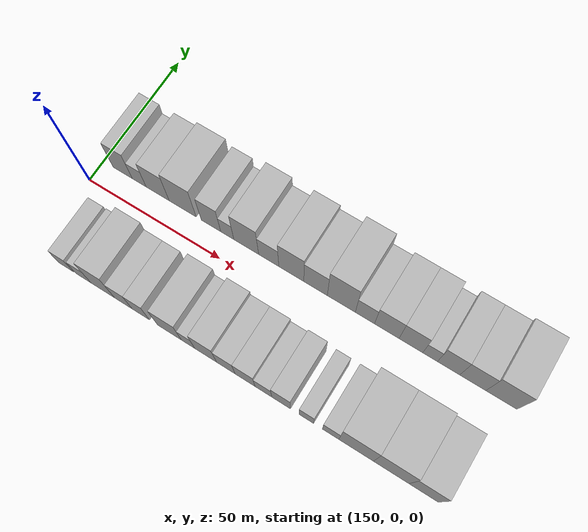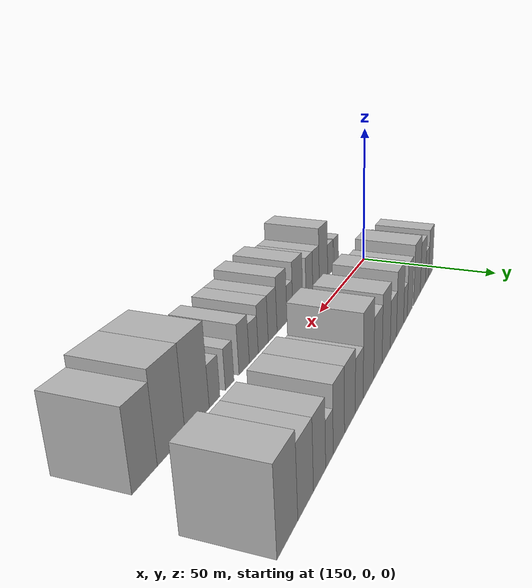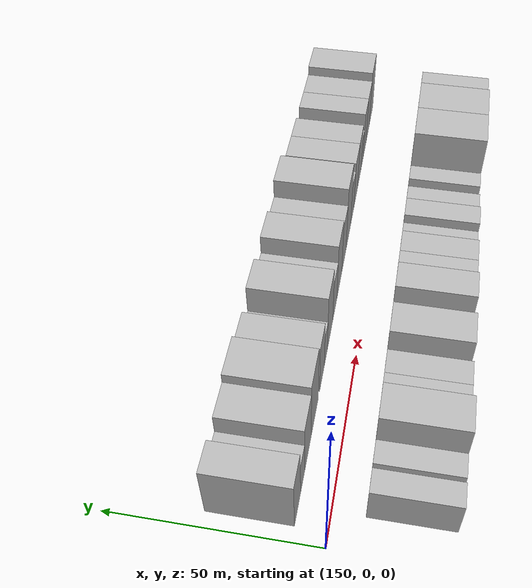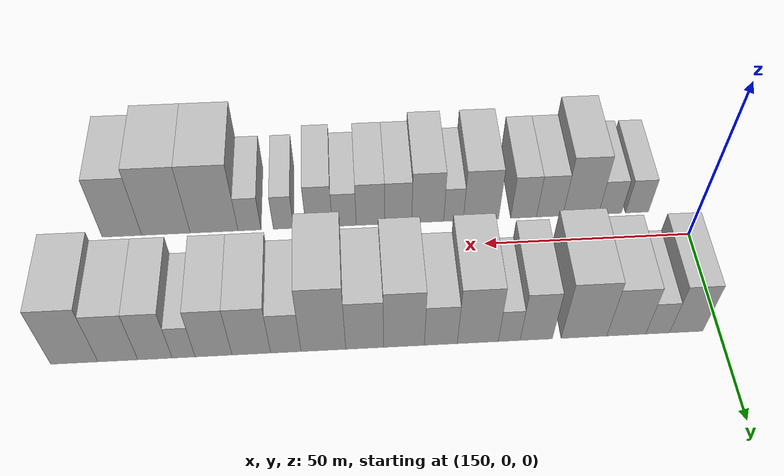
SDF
<sdf version="1.6">
 <world name="default">
  <model name="building_17">
   <static>1</static>
   <pose>157.5444 17.5000 0 0.000000 0.000000 1.570796</pose>
   <link name="link">
    <pose>0 0 9.00 0 0 0</pose>
    <collision name="collision"><geometry><box><size>20.0000 7.6067 18.0000</size></box></geometry></collision>
    <visual name="visual">
     <cast_shadows>0</cast_shadows>
     <geometry><box><size>20.0000 7.6067 18.0000</size></box></geometry>
     <material>
      <script>
       <uri>model://HANNAS_wall/materials/scripts</uri>
       <uri>model://HANNAS_wall/materials/textures</uri>
       <name>vrc/HANNAS_wall</name>
      </script>
     </material>
    </visual>
   </link>
  </model>
  <model name="building_18">
   <static>1</static>
   <pose>164.0554 17.5000 0 0.000000 0.000000 1.570796</pose>
   <link name="link">
    <pose>0 0 6.00 0 0 0</pose>
    <collision name="collision"><geometry><box><size>20.0000 5.4154 12.0000</size></box></geometry></collision>
    <visual name="visual">
     <cast_shadows>0</cast_shadows>
     <geometry><box><size>20.0000 5.4154 12.0000</size></box></geometry>
     <material>
      <script>
       <uri>model://HANNAS_wall/materials/scripts</uri>
       <uri>model://HANNAS_wall/materials/textures</uri>
       <name>vrc/HANNAS_wall</name>
      </script>
     </material>
    </visual>
   </link>
  </model>
  <model name="building_19">
   <static>1</static>
   <pose>171.2047 17.5000 0 0.000000 0.000000 1.570796</pose>
   <link name="link">
    <pose>0 0 9.00 0 0 0</pose>
    <collision name="collision"><geometry><box><size>20.0000 8.8832 18.0000</size></box></geometry></collision>
    <visual name="visual">
     <cast_shadows>0</cast_shadows>
     <geometry><box><size>20.0000 8.8832 18.0000</size></box></geometry>
     <material>
      <script>
       <uri>model://HANNAS_wall/materials/scripts</uri>
       <uri>model://HANNAS_wall/materials/textures</uri>
       <name>vrc/HANNAS_wall</name>
      </script>
     </material>
    </visual>
   </link>
  </model>
  <model name="building_20">
   <static>1</static>
   <pose>180.8166 17.5000 0 0.000000 0.000000 1.570796</pose>
   <link name="link">
    <pose>0 0 10.50 0 0 0</pose>
    <collision name="collision"><geometry><box><size>20.0000 10.3407 21.0000</size></box></geometry></collision>
    <visual name="visual">
     <cast_shadows>0</cast_shadows>
     <geometry><box><size>20.0000 10.3407 21.0000</size></box></geometry>
     <material>
      <script>
       <uri>model://HANNAS_wall/materials/scripts</uri>
       <uri>model://HANNAS_wall/materials/textures</uri>
       <name>vrc/HANNAS_wall</name>
      </script>
     </material>
    </visual>
   </link>
  </model>
  <model name="building_21">
   <static>1</static>
   <pose>191.6453 17.5000 0 0.000000 0.000000 1.570796</pose>
   <link name="link">
    <pose>0 0 9.00 0 0 0</pose>
    <collision name="collision"><geometry><box><size>20.0000 7.3166 18.0000</size></box></geometry></collision>
    <visual name="visual">
     <cast_shadows>0</cast_shadows>
     <geometry><box><size>20.0000 7.3166 18.0000</size></box></geometry>
     <material>
      <script>
       <uri>model://HANNAS_wall/materials/scripts</uri>
       <uri>model://HANNAS_wall/materials/textures</uri>
       <name>vrc/HANNAS_wall</name>
      </script>
     </material>
    </visual>
   </link>
  </model>
  <model name="building_22">
   <static>1</static>
   <pose>197.7555 17.5000 0 0.000000 0.000000 1.570796</pose>
   <link name="link">
    <pose>0 0 6.00 0 0 0</pose>
    <collision name="collision"><geometry><box><size>20.0000 4.9037 12.0000</size></box></geometry></collision>
    <visual name="visual">
     <cast_shadows>0</cast_shadows>
     <geometry><box><size>20.0000 4.9037 12.0000</size></box></geometry>
     <material>
      <script>
       <uri>model://HANNAS_wall/materials/scripts</uri>
       <uri>model://HANNAS_wall/materials/textures</uri>
       <name>vrc/HANNAS_wall</name>
      </script>
     </material>
    </visual>
   </link>
  </model>
  <model name="building_23">
   <static>1</static>
   <pose>204.8194 17.5000 0 0.000000 0.000000 1.570796</pose>
   <link name="link">
    <pose>0 0 10.50 0 0 0</pose>
    <collision name="collision"><geometry><box><size>20.0000 9.2242 21.0000</size></box></geometry></collision>
    <visual name="visual">
     <cast_shadows>0</cast_shadows>
     <geometry><box><size>20.0000 9.2242 21.0000</size></box></geometry>
     <material>
      <script>
       <uri>model://HANNAS_wall/materials/scripts</uri>
       <uri>model://HANNAS_wall/materials/textures</uri>
       <name>vrc/HANNAS_wall</name>
      </script>
     </material>
    </visual>
   </link>
  </model>
  <model name="building_24">
   <static>1</static>
   <pose>213.1341 17.5000 0 0.000000 0.000000 1.570796</pose>
   <link name="link">
    <pose>0 0 7.50 0 0 0</pose>
    <collision name="collision"><geometry><box><size>20.0000 7.4053 15.0000</size></box></geometry></collision>
    <visual name="visual">
     <cast_shadows>0</cast_shadows>
     <geometry><box><size>20.0000 7.4053 15.0000</size></box></geometry>
     <material>
      <script>
       <uri>model://HANNAS_wall/materials/scripts</uri>
       <uri>model://HANNAS_wall/materials/textures</uri>
       <name>vrc/HANNAS_wall</name>
      </script>
     </material>
    </visual>
   </link>
  </model>
  <model name="building_25">
   <static>1</static>
   <pose>221.3906 17.5000 0 0.000000 0.000000 1.570796</pose>
   <link name="link">
    <pose>0 0 10.50 0 0 0</pose>
    <collision name="collision"><geometry><box><size>20.0000 9.1077 21.0000</size></box></geometry></collision>
    <visual name="visual">
     <cast_shadows>0</cast_shadows>
     <geometry><box><size>20.0000 9.1077 21.0000</size></box></geometry>
     <material>
      <script>
       <uri>model://HANNAS_wall/materials/scripts</uri>
       <uri>model://HANNAS_wall/materials/textures</uri>
       <name>vrc/HANNAS_wall</name>
      </script>
     </material>
    </visual>
   </link>
  </model>
  <model name="building_26">
   <static>1</static>
   <pose>230.1751 17.5000 0 0.000000 0.000000 1.570796</pose>
   <link name="link">
    <pose>0 0 9.00 0 0 0</pose>
    <collision name="collision"><geometry><box><size>20.0000 8.4612 18.0000</size></box></geometry></collision>
    <visual name="visual">
     <cast_shadows>0</cast_shadows>
     <geometry><box><size>20.0000 8.4612 18.0000</size></box></geometry>
     <material>
      <script>
       <uri>model://HANNAS_wall/materials/scripts</uri>
       <uri>model://HANNAS_wall/materials/textures</uri>
       <name>vrc/HANNAS_wall</name>
      </script>
     </material>
    </visual>
   </link>
  </model>
  <model name="building_27">
   <static>1</static>
   <pose>239.3785 17.5000 0 0.000000 0.000000 1.570796</pose>
   <link name="link">
    <pose>0 0 12.00 0 0 0</pose>
    <collision name="collision"><geometry><box><size>20.0000 9.9455 24.0000</size></box></geometry></collision>
    <visual name="visual">
     <cast_shadows>0</cast_shadows>
     <geometry><box><size>20.0000 9.9455 24.0000</size></box></geometry>
     <material>
      <script>
       <uri>model://HANNAS_wall/materials/scripts</uri>
       <uri>model://HANNAS_wall/materials/textures</uri>
       <name>vrc/HANNAS_wall</name>
      </script>
     </material>
    </visual>
   </link>
  </model>
  <model name="building_28">
   <static>1</static>
   <pose>247.7230 17.5000 0 0.000000 0.000000 1.570796</pose>
   <link name="link">
    <pose>0 0 7.50 0 0 0</pose>
    <collision name="collision"><geometry><box><size>20.0000 6.7434 15.0000</size></box></geometry></collision>
    <visual name="visual">
     <cast_shadows>0</cast_shadows>
     <geometry><box><size>20.0000 6.7434 15.0000</size></box></geometry>
     <material>
      <script>
       <uri>model://HANNAS_wall/materials/scripts</uri>
       <uri>model://HANNAS_wall/materials/textures</uri>
       <name>vrc/HANNAS_wall</name>
      </script>
     </material>
    </visual>
   </link>
  </model>
  <model name="building_29">
   <static>1</static>
   <pose>255.3765 17.5000 0 0.000000 0.000000 1.570796</pose>
   <link name="link">
    <pose>0 0 9.00 0 0 0</pose>
    <collision name="collision"><geometry><box><size>20.0000 8.5637 18.0000</size></box></geometry></collision>
    <visual name="visual">
     <cast_shadows>0</cast_shadows>
     <geometry><box><size>20.0000 8.5637 18.0000</size></box></geometry>
     <material>
      <script>
       <uri>model://HANNAS_wall/materials/scripts</uri>
       <uri>model://HANNAS_wall/materials/textures</uri>
       <name>vrc/HANNAS_wall</name>
      </script>
     </material>
    </visual>
   </link>
  </model>
  <model name="building_30">
   <static>1</static>
   <pose>263.7326 17.5000 0 0.000000 0.000000 1.570796</pose>
   <link name="link">
    <pose>0 0 9.00 0 0 0</pose>
    <collision name="collision"><geometry><box><size>20.0000 8.1484 18.0000</size></box></geometry></collision>
    <visual name="visual">
     <cast_shadows>0</cast_shadows>
     <geometry><box><size>20.0000 8.1484 18.0000</size></box></geometry>
     <material>
      <script>
       <uri>model://HANNAS_wall/materials/scripts</uri>
       <uri>model://HANNAS_wall/materials/textures</uri>
       <name>vrc/HANNAS_wall</name>
      </script>
     </material>
    </visual>
   </link>
  </model>
  <model name="building_31">
   <static>1</static>
   <pose>270.3282 17.5000 0 0.000000 0.000000 1.570796</pose>
   <link name="link">
    <pose>0 0 6.00 0 0 0</pose>
    <collision name="collision"><geometry><box><size>20.0000 5.0429 12.0000</size></box></geometry></collision>
    <visual name="visual">
     <cast_shadows>0</cast_shadows>
     <geometry><box><size>20.0000 5.0429 12.0000</size></box></geometry>
     <material>
      <script>
       <uri>model://HANNAS_wall/materials/scripts</uri>
       <uri>model://HANNAS_wall/materials/textures</uri>
       <name>vrc/HANNAS_wall</name>
      </script>
     </material>
    </visual>
   </link>
  </model>
  <model name="building_32">
   <static>1</static>
   <pose>276.6278 17.5000 0 0.000000 0.000000 1.570796</pose>
   <link name="link">
    <pose>0 0 9.00 0 0 0</pose>
    <collision name="collision"><geometry><box><size>20.0000 7.5561 18.0000</size></box></geometry></collision>
    <visual name="visual">
     <cast_shadows>0</cast_shadows>
     <geometry><box><size>20.0000 7.5561 18.0000</size></box></geometry>
     <material>
      <script>
       <uri>model://HANNAS_wall/materials/scripts</uri>
       <uri>model://HANNAS_wall/materials/textures</uri>
       <name>vrc/HANNAS_wall</name>
      </script>
     </material>
    </visual>
   </link>
  </model>
  <model name="building_33">
   <static>1</static>
   <pose>284.7762 17.5000 0 0.000000 0.000000 1.570796</pose>
   <link name="link">
    <pose>0 0 9.00 0 0 0</pose>
    <collision name="collision"><geometry><box><size>20.0000 8.7407 18.0000</size></box></geometry></collision>
    <visual name="visual">
     <cast_shadows>0</cast_shadows>
     <geometry><box><size>20.0000 8.7407 18.0000</size></box></geometry>
     <material>
      <script>
       <uri>model://HANNAS_wall/materials/scripts</uri>
       <uri>model://HANNAS_wall/materials/textures</uri>
       <name>vrc/HANNAS_wall</name>
      </script>
     </material>
    </visual>
   </link>
  </model>
  <model name="building_34">
   <static>1</static>
   <pose>294.3097 17.5000 0 0.000000 0.000000 1.570796</pose>
   <link name="link">
    <pose>0 0 10.50 0 0 0</pose>
    <collision name="collision"><geometry><box><size>20.0000 10.3263 21.0000</size></box></geometry></collision>
    <visual name="visual">
     <cast_shadows>0</cast_shadows>
     <geometry><box><size>20.0000 10.3263 21.0000</size></box></geometry>
     <material>
      <script>
       <uri>model://HANNAS_wall/materials/scripts</uri>
       <uri>model://HANNAS_wall/materials/textures</uri>
       <name>vrc/HANNAS_wall</name>
      </script>
     </material>
    </visual>
   </link>
  </model>
  <model name="building_51">
   <static>1</static>
   <pose>161.2080 -17.5000 0 0.000000 0.000000 1.570796</pose>
   <link name="link">
    <pose>0 0 6.00 0 0 0</pose>
    <collision name="collision"><geometry><box><size>20.0000 5.7583 12.0000</size></box></geometry></collision>
    <visual name="visual">
     <cast_shadows>0</cast_shadows>
     <geometry><box><size>20.0000 5.7583 12.0000</size></box></geometry>
     <material>
      <script>
       <uri>model://HANNAS_wall/materials/scripts</uri>
       <uri>model://HANNAS_wall/materials/textures</uri>
       <name>vrc/HANNAS_wall</name>
      </script>
     </material>
    </visual>
   </link>
  </model>
  <model name="building_52">
   <static>1</static>
   <pose>167.9482 -17.5000 0 0.000000 0.000000 1.570796</pose>
   <link name="link">
    <pose>0 0 6.00 0 0 0</pose>
    <collision name="collision"><geometry><box><size>20.0000 5.7222 12.0000</size></box></geometry></collision>
    <visual name="visual">
     <cast_shadows>0</cast_shadows>
     <geometry><box><size>20.0000 5.7222 12.0000</size></box></geometry>
     <material>
      <script>
       <uri>model://HANNAS_wall/materials/scripts</uri>
       <uri>model://HANNAS_wall/materials/textures</uri>
       <name>vrc/HANNAS_wall</name>
      </script>
     </material>
    </visual>
   </link>
  </model>
  <model name="building_53">
   <static>1</static>
   <pose>175.2783 -17.5000 0 0.000000 0.000000 1.570796</pose>
   <link name="link">
    <pose>0 0 10.50 0 0 0</pose>
    <collision name="collision"><geometry><box><size>20.0000 8.9378 21.0000</size></box></geometry></collision>
    <visual name="visual">
     <cast_shadows>0</cast_shadows>
     <geometry><box><size>20.0000 8.9378 21.0000</size></box></geometry>
     <material>
      <script>
       <uri>model://HANNAS_wall/materials/scripts</uri>
       <uri>model://HANNAS_wall/materials/textures</uri>
       <name>vrc/HANNAS_wall</name>
      </script>
     </material>
    </visual>
   </link>
  </model>
  <model name="building_54">
   <static>1</static>
   <pose>183.0060 -17.5000 0 0.000000 0.000000 1.570796</pose>
   <link name="link">
    <pose>0 0 7.50 0 0 0</pose>
    <collision name="collision"><geometry><box><size>20.0000 6.5176 15.0000</size></box></geometry></collision>
    <visual name="visual">
     <cast_shadows>0</cast_shadows>
     <geometry><box><size>20.0000 6.5176 15.0000</size></box></geometry>
     <material>
      <script>
       <uri>model://HANNAS_wall/materials/scripts</uri>
       <uri>model://HANNAS_wall/materials/textures</uri>
       <name>vrc/HANNAS_wall</name>
      </script>
     </material>
    </visual>
   </link>
  </model>
  <model name="building_55">
   <static>1</static>
   <pose>189.4736 -17.5000 0 0.000000 0.000000 1.570796</pose>
   <link name="link">
    <pose>0 0 7.50 0 0 0</pose>
    <collision name="collision"><geometry><box><size>20.0000 6.4178 15.0000</size></box></geometry></collision>
    <visual name="visual">
     <cast_shadows>0</cast_shadows>
     <geometry><box><size>20.0000 6.4178 15.0000</size></box></geometry>
     <material>
      <script>
       <uri>model://HANNAS_wall/materials/scripts</uri>
       <uri>model://HANNAS_wall/materials/textures</uri>
       <name>vrc/HANNAS_wall</name>
      </script>
     </material>
    </visual>
   </link>
  </model>
  <model name="building_56">
   <static>1</static>
   <pose>200.0510 -17.5000 0 0.000000 0.000000 1.570796</pose>
   <link name="link">
    <pose>0 0 9.00 0 0 0</pose>
    <collision name="collision"><geometry><box><size>20.0000 8.7370 18.0000</size></box></geometry></collision>
    <visual name="visual">
     <cast_shadows>0</cast_shadows>
     <geometry><box><size>20.0000 8.7370 18.0000</size></box></geometry>
     <material>
      <script>
       <uri>model://HANNAS_wall/materials/scripts</uri>
       <uri>model://HANNAS_wall/materials/textures</uri>
       <name>vrc/HANNAS_wall</name>
      </script>
     </material>
    </visual>
   </link>
  </model>
  <model name="building_57">
   <static>1</static>
   <pose>206.8393 -17.5000 0 0.000000 0.000000 1.570796</pose>
   <link name="link">
    <pose>0 0 6.00 0 0 0</pose>
    <collision name="collision"><geometry><box><size>20.0000 4.8397 12.0000</size></box></geometry></collision>
    <visual name="visual">
     <cast_shadows>0</cast_shadows>
     <geometry><box><size>20.0000 4.8397 12.0000</size></box></geometry>
     <material>
      <script>
       <uri>model://HANNAS_wall/materials/scripts</uri>
       <uri>model://HANNAS_wall/materials/textures</uri>
       <name>vrc/HANNAS_wall</name>
      </script>
     </material>
    </visual>
   </link>
  </model>
  <model name="building_58">
   <static>1</static>
   <pose>213.2057 -17.5000 0 0.000000 0.000000 1.570796</pose>
   <link name="link">
    <pose>0 0 9.00 0 0 0</pose>
    <collision name="collision"><geometry><box><size>20.0000 7.8933 18.0000</size></box></geometry></collision>
    <visual name="visual">
     <cast_shadows>0</cast_shadows>
     <geometry><box><size>20.0000 7.8933 18.0000</size></box></geometry>
     <material>
      <script>
       <uri>model://HANNAS_wall/materials/scripts</uri>
       <uri>model://HANNAS_wall/materials/textures</uri>
       <name>vrc/HANNAS_wall</name>
      </script>
     </material>
    </visual>
   </link>
  </model>
  <model name="building_59">
   <static>1</static>
   <pose>220.4458 -17.5000 0 0.000000 0.000000 1.570796</pose>
   <link name="link">
    <pose>0 0 7.50 0 0 0</pose>
    <collision name="collision"><geometry><box><size>20.0000 6.5869 15.0000</size></box></geometry></collision>
    <visual name="visual">
     <cast_shadows>0</cast_shadows>
     <geometry><box><size>20.0000 6.5869 15.0000</size></box></geometry>
     <material>
      <script>
       <uri>model://HANNAS_wall/materials/scripts</uri>
       <uri>model://HANNAS_wall/materials/textures</uri>
       <name>vrc/HANNAS_wall</name>
      </script>
     </material>
    </visual>
   </link>
  </model>
  <model name="building_60">
   <static>1</static>
   <pose>227.2443 -17.5000 0 0.000000 0.000000 1.570796</pose>
   <link name="link">
    <pose>0 0 7.50 0 0 0</pose>
    <collision name="collision"><geometry><box><size>20.0000 7.0101 15.0000</size></box></geometry></collision>
    <visual name="visual">
     <cast_shadows>0</cast_shadows>
     <geometry><box><size>20.0000 7.0101 15.0000</size></box></geometry>
     <material>
      <script>
       <uri>model://HANNAS_wall/materials/scripts</uri>
       <uri>model://HANNAS_wall/materials/textures</uri>
       <name>vrc/HANNAS_wall</name>
      </script>
     </material>
    </visual>
   </link>
  </model>
  <model name="building_61">
   <static>1</static>
   <pose>233.6816 -17.5000 0 0.000000 0.000000 1.570796</pose>
   <link name="link">
    <pose>0 0 6.00 0 0 0</pose>
    <collision name="collision"><geometry><box><size>20.0000 5.8646 12.0000</size></box></geometry></collision>
    <visual name="visual">
     <cast_shadows>0</cast_shadows>
     <geometry><box><size>20.0000 5.8646 12.0000</size></box></geometry>
     <material>
      <script>
       <uri>model://HANNAS_wall/materials/scripts</uri>
       <uri>model://HANNAS_wall/materials/textures</uri>
       <name>vrc/HANNAS_wall</name>
      </script>
     </material>
    </visual>
   </link>
  </model>
  <model name="building_62">
   <static>1</static>
   <pose>239.8401 -17.5000 0 0.000000 0.000000 1.570796</pose>
   <link name="link">
    <pose>0 0 7.50 0 0 0</pose>
    <collision name="collision"><geometry><box><size>20.0000 6.4524 15.0000</size></box></geometry></collision>
    <visual name="visual">
     <cast_shadows>0</cast_shadows>
     <geometry><box><size>20.0000 6.4524 15.0000</size></box></geometry>
     <material>
      <script>
       <uri>model://HANNAS_wall/materials/scripts</uri>
       <uri>model://HANNAS_wall/materials/textures</uri>
       <name>vrc/HANNAS_wall</name>
      </script>
     </material>
    </visual>
   </link>
  </model>
  <model name="building_63">
   <static>1</static>
   <pose>248.5388 -17.5000 0 0.000000 0.000000 1.570796</pose>
   <link name="link">
    <pose>0 0 6.00 0 0 0</pose>
    <collision name="collision"><geometry><box><size>20.0000 4.9450 12.0000</size></box></geometry></collision>
    <visual name="visual">
     <cast_shadows>0</cast_shadows>
     <geometry><box><size>20.0000 4.9450 12.0000</size></box></geometry>
     <material>
      <script>
       <uri>model://HANNAS_wall/materials/scripts</uri>
       <uri>model://HANNAS_wall/materials/textures</uri>
       <name>vrc/HANNAS_wall</name>
      </script>
     </material>
    </visual>
   </link>
  </model>
  <model name="building_64">
   <static>1</static>
   <pose>256.8130 -17.5000 0 0.000000 0.000000 1.570796</pose>
   <link name="link">
    <pose>0 0 6.00 0 0 0</pose>
    <collision name="collision"><geometry><box><size>20.0000 5.6035 12.0000</size></box></geometry></collision>
    <visual name="visual">
     <cast_shadows>0</cast_shadows>
     <geometry><box><size>20.0000 5.6035 12.0000</size></box></geometry>
     <material>
      <script>
       <uri>model://HANNAS_wall/materials/scripts</uri>
       <uri>model://HANNAS_wall/materials/textures</uri>
       <name>vrc/HANNAS_wall</name>
      </script>
     </material>
    </visual>
   </link>
  </model>
  <model name="building_65">
   <static>1</static>
   <pose>265.4101 -17.5000 0 0.000000 0.000000 1.570796</pose>
   <link name="link">
    <pose>0 0 12.00 0 0 0</pose>
    <collision name="collision"><geometry><box><size>20.0000 11.5906 24.0000</size></box></geometry></collision>
    <visual name="visual">
     <cast_shadows>0</cast_shadows>
     <geometry><box><size>20.0000 11.5906 24.0000</size></box></geometry>
     <material>
      <script>
       <uri>model://HANNAS_wall/materials/scripts</uri>
       <uri>model://HANNAS_wall/materials/textures</uri>
       <name>vrc/HANNAS_wall</name>
      </script>
     </material>
    </visual>
   </link>
  </model>
  <model name="building_66">
   <static>1</static>
   <pose>277.0747 -17.5000 0 0.000000 0.000000 1.570796</pose>
   <link name="link">
    <pose>0 0 12.00 0 0 0</pose>
    <collision name="collision"><geometry><box><size>20.0000 11.7385 24.0000</size></box></geometry></collision>
    <visual name="visual">
     <cast_shadows>0</cast_shadows>
     <geometry><box><size>20.0000 11.7385 24.0000</size></box></geometry>
     <material>
      <script>
       <uri>model://HANNAS_wall/materials/scripts</uri>
       <uri>model://HANNAS_wall/materials/textures</uri>
       <name>vrc/HANNAS_wall</name>
      </script>
     </material>
    </visual>
   </link>
  </model>
  <model name="building_67">
   <static>1</static>
   <pose>287.7169 -17.5000 0 0.000000 0.000000 1.570796</pose>
   <link name="link">
    <pose>0 0 10.50 0 0 0</pose>
    <collision name="collision"><geometry><box><size>20.0000 9.5458 21.0000</size></box></geometry></collision>
    <visual name="visual">
     <cast_shadows>0</cast_shadows>
     <geometry><box><size>20.0000 9.5458 21.0000</size></box></geometry>
     <material>
      <script>
       <uri>model://HANNAS_wall/materials/scripts</uri>
       <uri>model://HANNAS_wall/materials/textures</uri>
       <name>vrc/HANNAS_wall</name>
      </script>
     </material>
    </visual>
   </link>
  </model>
 </world>
</sdf>
